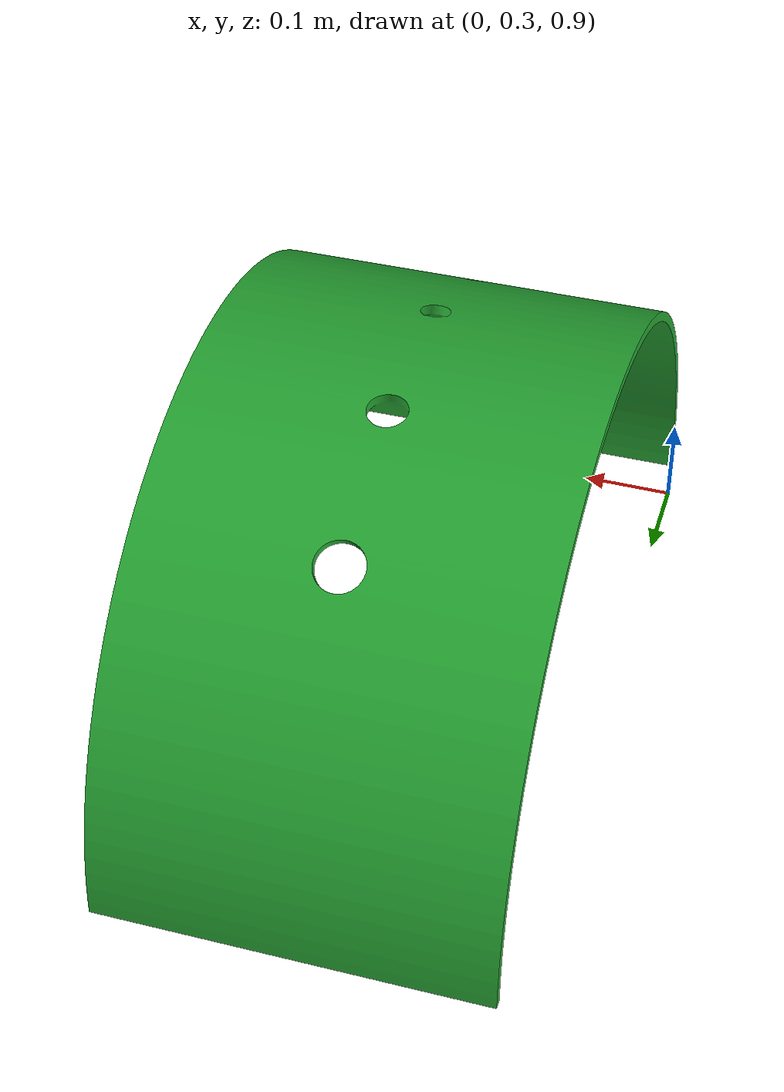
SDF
<?xml version='1.0'?>
<sdf version='1.6'>
  <model name='mounting_dock'>
    <pose frame=''>0.2 0.7 1.2 0 0 -1.57</pose>
    <link name='mounting_dock_link'>
      <inertial>
        <mass>1</mass>
        <pose>-0.199999 0.400001 0.223973 0 0 0</pose>
        <inertia>
          <ixx>0.003272</ixx>
          <ixy>0</ixy>
          <ixz>0</ixz>
          <iyy>0.001119</iyy>
          <iyz>0</iyz>
          <izz>0.003325</izz>
        </inertia>
      </inertial>
      <collision name='collision'>
        <geometry>
          <mesh>
            <uri>model://kuka_barrett_gazebo/objects/mounting_dock/meshes/mounting_dock.stl</uri>
          </mesh>
        </geometry>
        <max_contacts>10</max_contacts>
        <surface>
          <contact>
            <ode/>
          </contact>
          <bounce/>
          <friction>
            <torsional>
              <ode/>
            </torsional>
            <ode/>
          </friction>
        </surface>
      </collision>
      <visual name='visual'>
        <geometry>
          <mesh>
            <uri>model://kuka_barrett_gazebo/objects/mounting_dock/meshes/mounting_dock.stl</uri>
          </mesh>
        </geometry>
        <material>
          <script>
            <name>Gazebo/Green</name>
            <uri>file://media/materials/scripts/gazebo.material</uri>
          </script>
        </material>
      </visual>
      <self_collide>0</self_collide>
      <enable_wind>0</enable_wind>
      <kinematic>0</kinematic>
    </link>
  </model>
</sdf>
